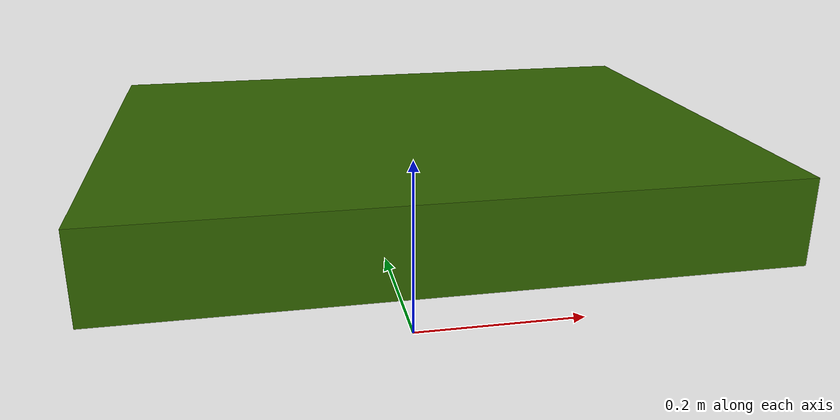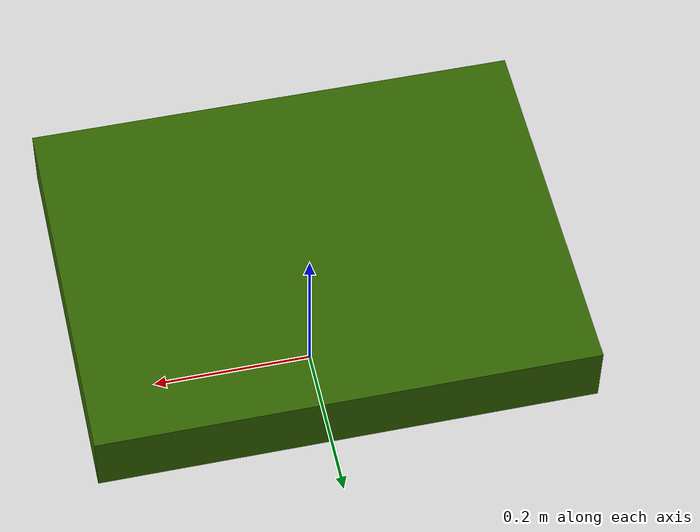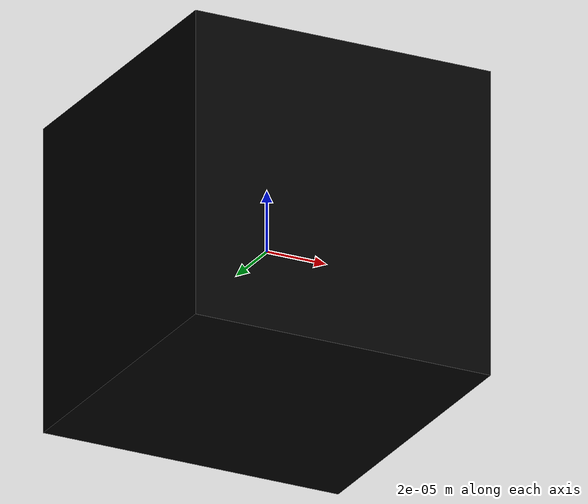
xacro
<?xml version="1.0" ?>
<robot name="base" xmlns:xacro="http://ros.org/wiki/xacro">

<!--xacro:property name="leg_radius" value="${108.743/1e3}"/-->
<xacro:property name="leg_radius" value="${80/1e3}"/>
<xacro:property name="chassis_height" value="${40/1e3}"/>

<link name="base_footprint">
    <visual>
        <geometry>
            <box size="0.0001 0.0001 0.0001"/>
        </geometry>
        <material name="transparente">
            <color rgba="0 0 0 0"/>
        </material>
    </visual>
</link>

<joint name="footprint_base_joint" type="fixed">
    <parent link="base_footprint"/>
    <child link="base_link"/>
    <origin xyz="0 0 ${leg_radius*2 + chassis_height}" rpy="0 0 0"/>
</joint>

<!-- CHASIS -->
<link name="base_link">

    <inertial>
        <origin xyz="0 0 0" rpy="0 0 0"/>
        <mass value="5"/>
        <inertia ixx="1"
                 ixy="0"                 iyy="1"
                 ixz="0"                 iyz="0"                  izz="1"/>
    </inertial>
    <visual>
        <origin xyz="0 0 0" rpy="0 0 0"/>
        <geometry>
            <box size="${600/1000} ${460/1000} ${80/1000}"/>
        </geometry>
        <material name="base_link_material">
            <color rgba="${51/255} ${102/255} ${0/255} 1"/>
        </material>
    </visual>
    <collision>
        <origin xyz="0 0 0" rpy="0 0 0"/>
        <geometry>
            <box size="${600/1000} ${460/1000} ${80/1000}"/>
        </geometry>
    </collision>

</link>

<gazebo reference="base_link">
    <material>Gazebo/Green</material>
</gazebo>

</robot>
